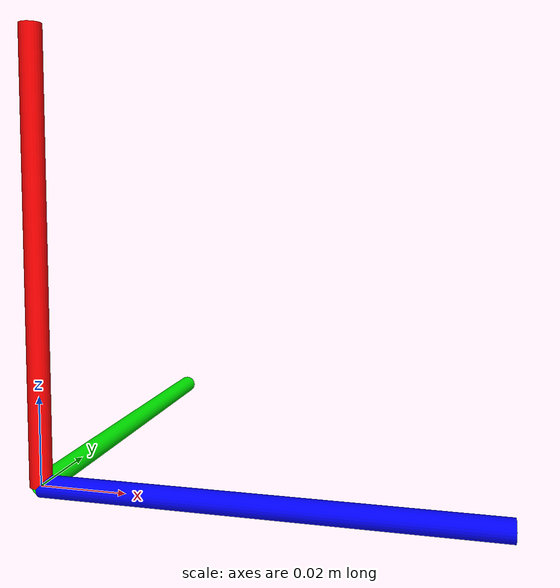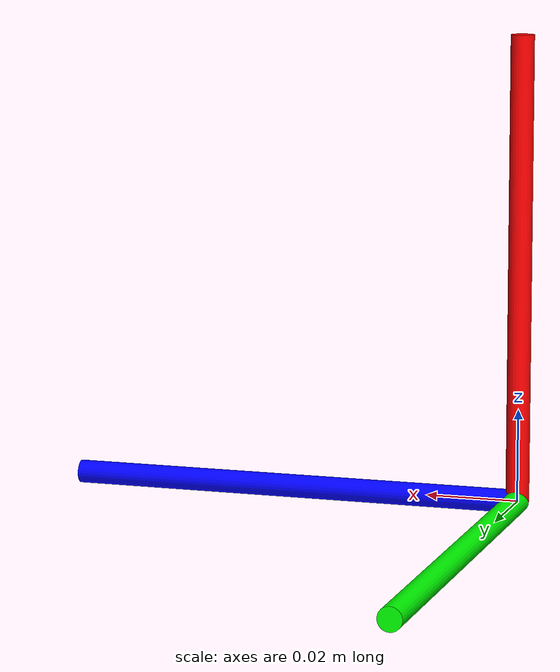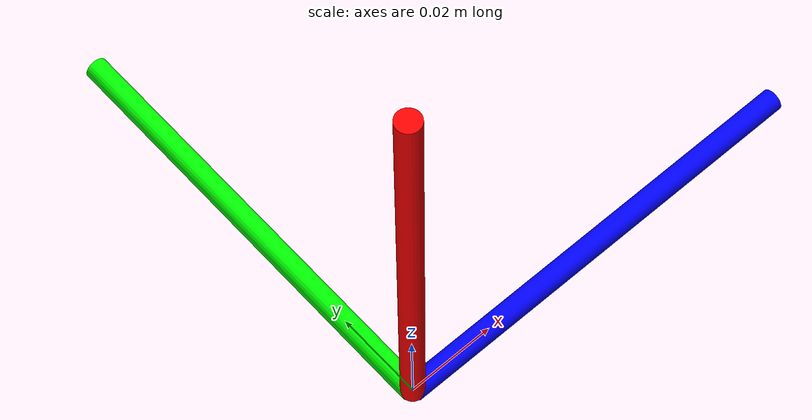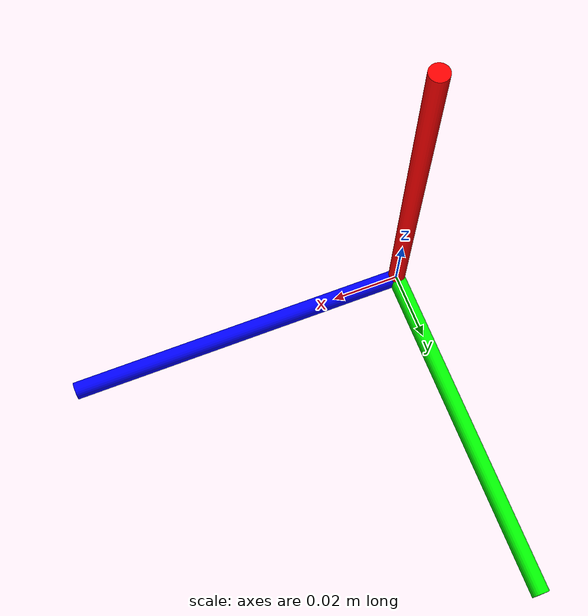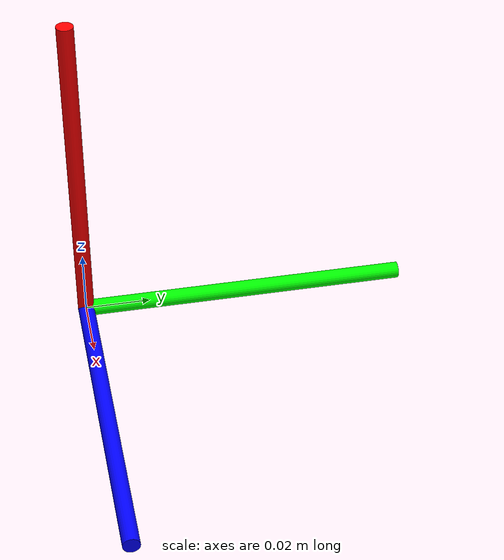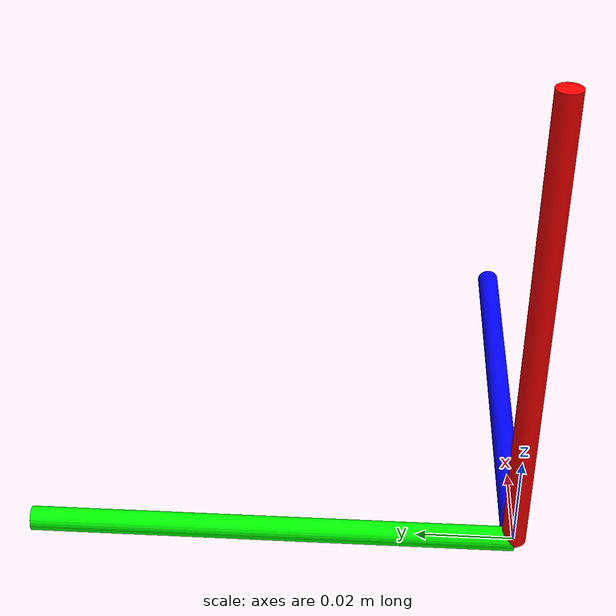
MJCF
<mujoco model="coordinate_system">
  <worldbody>
    <body>
      <body name="object">
        <geom pos="0 0 0" type="cylinder" size="0.0025 0.1" fromto="0 0 0 0 0 0.1" rgba="1 0 0 1" conaffinity="0" contype="0" group="1" mass="0.0001"/>
        <geom pos="0 0 0" type="cylinder" size="0.0025 0.1" fromto="0 0 0 0 0.1 0" rgba="0 1 0 1" conaffinity="0" contype="0" group="1" mass="0.0001"/>
        <geom pos="0 0 0" type="cylinder" size="0.0025 0.1" fromto="0 0 0 0.1 0 0" rgba="0 0 1 1" conaffinity="0" contype="0" group="1" mass="0.0001"/>
      </body>
    </body>
  </worldbody>
</mujoco>
